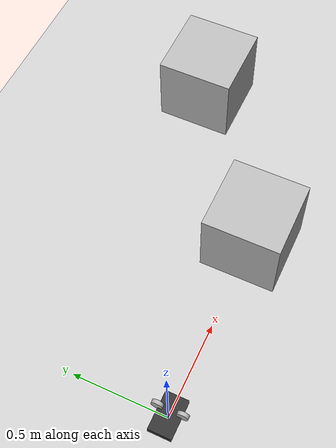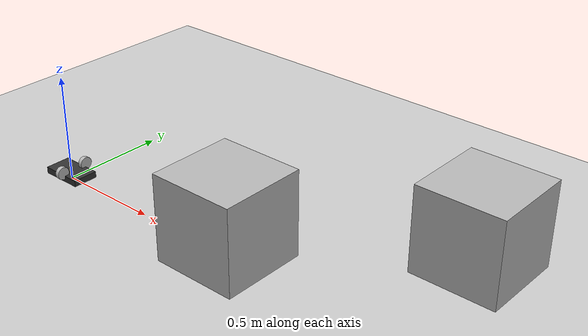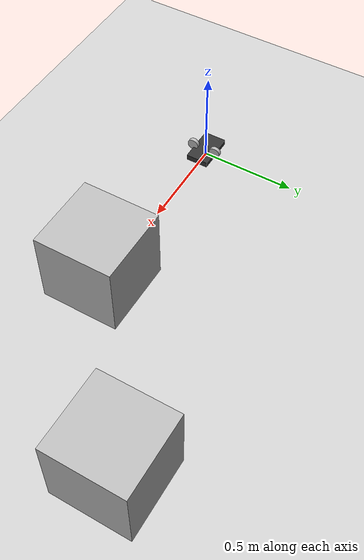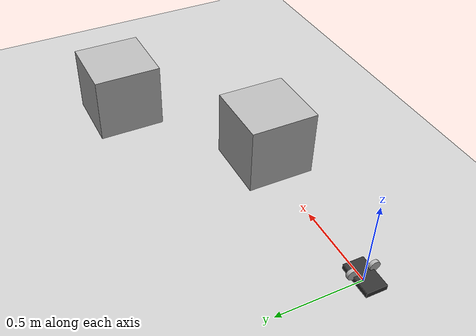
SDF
<sdf version='1.10'>
  <world name='factory'>
    <gravity>0 0 -9.8100000000000005</gravity>
    <magnetic_field>5.5644999999999998e-06 2.2875799999999999e-05 -4.2388400000000002e-05</magnetic_field>
    <atmosphere type='adiabatic'/>
    <physics type='ode'>
      <max_step_size>0.001</max_step_size>
      <real_time_factor>1</real_time_factor>
      <real_time_update_rate>1000</real_time_update_rate>
    </physics>
    <scene>
      <ambient>0.400000006 0.400000006 0.400000006 1</ambient>
      <background>0.699999988 0.699999988 0.699999988 1</background>
      <shadows>true</shadows>
    </scene>
    <model name='ground'>
      <static>true</static>
      <link name='link'>
        <collision name='col'>
          <geometry>
            <plane>
              <normal>0 0 1</normal>
              <size>100 100</size>
            </plane>
          </geometry>
          <surface>
            <friction>
              <ode/>
            </friction>
            <bounce/>
            <contact/>
          </surface>
        </collision>
        <visual name='vis'>
          <geometry>
            <plane>
              <normal>0 0 1</normal>
              <size>100 100</size>
            </plane>
          </geometry>
          <material>
            <ambient>0.800000012 0.800000012 0.800000012 1</ambient>
            <diffuse>0.800000012 0.800000012 0.800000012 1</diffuse>
          </material>
        </visual>
        <pose>0 0 0 0 0 0</pose>
        <inertial>
          <pose>0 0 0 0 0 0</pose>
          <mass>1</mass>
          <inertia>
            <ixx>1</ixx>
            <ixy>0</ixy>
            <ixz>0</ixz>
            <iyy>1</iyy>
            <iyz>0</iyz>
            <izz>1</izz>
          </inertia>
        </inertial>
        <enable_wind>false</enable_wind>
      </link>
      <pose>0 0 0 0 0 0</pose>
      <self_collide>false</self_collide>
    </model>
    <model name='box_1'>
      <static>true</static>
      <pose>1 0 0.20000000000000001 0 0 0</pose>
      <link name='link'>
        <collision name='col'>
          <geometry>
            <box>
              <size>0.40000000000000002 0.40000000000000002 0.40000000000000002</size>
            </box>
          </geometry>
          <surface>
            <friction>
              <ode/>
            </friction>
            <bounce/>
            <contact/>
          </surface>
        </collision>
        <visual name='vis'>
          <geometry>
            <box>
              <size>0.40000000000000002 0.40000000000000002 0.40000000000000002</size>
            </box>
          </geometry>
        </visual>
        <pose>0 0 0 0 0 0</pose>
        <inertial>
          <pose>0 0 0 0 0 0</pose>
          <mass>1</mass>
          <inertia>
            <ixx>1</ixx>
            <ixy>0</ixy>
            <ixz>0</ixz>
            <iyy>1</iyy>
            <iyz>0</iyz>
            <izz>1</izz>
          </inertia>
        </inertial>
        <enable_wind>false</enable_wind>
      </link>
      <self_collide>false</self_collide>
    </model>
    <model name='box_2'>
      <static>true</static>
      <pose>1.8 0.59999999999999998 0.20000000000000001 0 0 0</pose>
      <link name='link'>
        <collision name='col'>
          <geometry>
            <box>
              <size>0.40000000000000002 0.40000000000000002 0.40000000000000002</size>
            </box>
          </geometry>
          <surface>
            <friction>
              <ode/>
            </friction>
            <bounce/>
            <contact/>
          </surface>
        </collision>
        <visual name='vis'>
          <geometry>
            <box>
              <size>0.40000000000000002 0.40000000000000002 0.40000000000000002</size>
            </box>
          </geometry>
        </visual>
        <pose>0 0 0 0 0 0</pose>
        <inertial>
          <pose>0 0 0 0 0 0</pose>
          <mass>1</mass>
          <inertia>
            <ixx>1</ixx>
            <ixy>0</ixy>
            <ixz>0</ixz>
            <iyy>1</iyy>
            <iyz>0</iyz>
            <izz>1</izz>
          </inertia>
        </inertial>
        <enable_wind>false</enable_wind>
      </link>
      <self_collide>false</self_collide>
    </model>
    <model name='picarx'>
      <pose>0 0 0.029999999999999999 0 0 0</pose>
      <static>false</static>
      <allow_auto_disable>true</allow_auto_disable>
      <link name='base_link'>
        <inertial>
          <mass>0.80000000000000004</mass>
          <inertia>
            <ixx>0.002</ixx>
            <iyy>0.0040000000000000001</iyy>
            <izz>0.0050000000000000001</izz>
            <ixy>0</ixy>
            <ixz>0</ixz>
            <iyz>0</iyz>
          </inertia>
          <pose>0 0 0 0 0 0</pose>
        </inertial>
        <collision name='base_col'>
          <geometry>
            <box>
              <size>0.20000000000000001 0.12 0.029999999999999999</size>
            </box>
          </geometry>
          <surface>
            <friction>
              <ode/>
            </friction>
            <bounce/>
            <contact/>
          </surface>
        </collision>
        <visual name='base_vis'>
          <geometry>
            <box>
              <size>0.20000000000000001 0.12 0.029999999999999999</size>
            </box>
          </geometry>
          <material>
            <diffuse>0.200000003 0.200000003 0.200000003 1</diffuse>
          </material>
        </visual>
        <pose>0 0 0 0 0 0</pose>
        <enable_wind>false</enable_wind>
      </link>
      <link name='left_wheel'>
        <pose>0.02 0.065000000000000002 0.029999999999999999 3.1415926535897931 1.5707926536359933 3.1415926535897931</pose>
        <inertial>
          <mass>0.050000000000000003</mass>
          <inertia>
            <ixx>0.0001</ixx>
            <iyy>0.0001</iyy>
            <izz>0.00020000000000000001</izz>
            <ixy>0</ixy>
            <ixz>0</ixz>
            <iyz>0</iyz>
          </inertia>
          <pose>0 0 0 0 0 0</pose>
        </inertial>
        <collision name='col'>
          <geometry>
            <cylinder>
              <radius>0.029999999999999999</radius>
              <length>0.02</length>
            </cylinder>
          </geometry>
          <surface>
            <friction>
              <ode/>
            </friction>
            <bounce/>
            <contact/>
          </surface>
        </collision>
        <visual name='vis'>
          <geometry>
            <cylinder>
              <radius>0.029999999999999999</radius>
              <length>0.02</length>
            </cylinder>
          </geometry>
        </visual>
        <enable_wind>false</enable_wind>
      </link>
      <link name='right_wheel'>
        <pose>0.02 -0.065000000000000002 0.029999999999999999 3.1415926535897931 1.5707926536359933 3.1415926535897931</pose>
        <inertial>
          <mass>0.050000000000000003</mass>
          <inertia>
            <ixx>0.0001</ixx>
            <iyy>0.0001</iyy>
            <izz>0.00020000000000000001</izz>
            <ixy>0</ixy>
            <ixz>0</ixz>
            <iyz>0</iyz>
          </inertia>
          <pose>0 0 0 0 0 0</pose>
        </inertial>
        <collision name='col'>
          <geometry>
            <cylinder>
              <radius>0.029999999999999999</radius>
              <length>0.02</length>
            </cylinder>
          </geometry>
          <surface>
            <friction>
              <ode/>
            </friction>
            <bounce/>
            <contact/>
          </surface>
        </collision>
        <visual name='vis'>
          <geometry>
            <cylinder>
              <radius>0.029999999999999999</radius>
              <length>0.02</length>
            </cylinder>
          </geometry>
        </visual>
        <enable_wind>false</enable_wind>
      </link>
      <joint name='left_wheel_joint' type='revolute'>
        <parent>base_link</parent>
        <child>left_wheel</child>
        <axis>
          <xyz>0 0 1</xyz>
          <limit>
            <lower>-10000000000000000</lower>
            <upper>10000000000000000</upper>
            <effort>inf</effort>
            <velocity>inf</velocity>
            <stiffness>100000000</stiffness>
            <dissipation>1</dissipation>
          </limit>
          <dynamics>
            <spring_reference>0</spring_reference>
            <spring_stiffness>0</spring_stiffness>
            <damping>0</damping>
            <friction>0</friction>
          </dynamics>
        </axis>
        <pose>-1.0408340855860843e-17 0 6.9388939039072284e-18 0 0 0</pose>
      </joint>
      <joint name='right_wheel_joint' type='revolute'>
        <parent>base_link</parent>
        <child>right_wheel</child>
        <axis>
          <xyz>0 0 1</xyz>
          <limit>
            <lower>-10000000000000000</lower>
            <upper>10000000000000000</upper>
            <effort>inf</effort>
            <velocity>inf</velocity>
            <stiffness>100000000</stiffness>
            <dissipation>1</dissipation>
          </limit>
          <dynamics>
            <spring_reference>0</spring_reference>
            <spring_stiffness>0</spring_stiffness>
            <damping>0</damping>
            <friction>0</friction>
          </dynamics>
        </axis>
        <pose>-1.0408340855860843e-17 0 6.9388939039072284e-18 0 0 0</pose>
      </joint>
      <link name='sonar_link'>
        <pose>0.11 0 0.050000000000000003 0 0 0</pose>
        <sensor name='front_scan' type='gpu_lidar'>
          <pose>0 0 0 0 0 0</pose>
          <topic>front_scan</topic>
          <update_rate>20</update_rate>
          <enable_metrics>false</enable_metrics>
          <lidar>
            <scan>
              <horizontal>
                <samples>9</samples>
                <resolution>1</resolution>
                <min_angle>-0.45000000000000001</min_angle>
                <max_angle>0.45000000000000001</max_angle>
              </horizontal>
              <vertical>
                <samples>1</samples>
                <min_angle>0</min_angle>
                <max_angle>0</max_angle>
                <resolution>1</resolution>
              </vertical>
            </scan>
            <range>
              <min>0.02</min>
              <max>3</max>
              <resolution>0</resolution>
            </range>
            <noise>
              <type>none</type>
              <mean>0</mean>
              <stddev>0</stddev>
            </noise>
            <visibility_mask>4294967295</visibility_mask>
          </lidar>
        </sensor>
        <inertial>
          <pose>0 0 0 0 0 0</pose>
          <mass>1</mass>
          <inertia>
            <ixx>1</ixx>
            <ixy>0</ixy>
            <ixz>0</ixz>
            <iyy>1</iyy>
            <iyz>0</iyz>
            <izz>1</izz>
          </inertia>
        </inertial>
        <enable_wind>false</enable_wind>
      </link>
      <link name='camera_link'>
        <pose>0.10000000000000001 0 0.059999999999999998 0 0 0</pose>
        <sensor name='front_camera' type='camera'>
          <pose>0 0 0 0 0 0</pose>
          <topic>image</topic>
          <update_rate>15</update_rate>
          <enable_metrics>false</enable_metrics>
          <camera name='__default__'>
            <pose>0 0 0 0 0 0</pose>
            <horizontal_fov>1.0469999999999999</horizontal_fov>
            <image>
              <width>320</width>
              <height>240</height>
              <format>RGB_INT8</format>
              <anti_aliasing>4</anti_aliasing>
            </image>
            <camera_info_topic>__default__</camera_info_topic>
            <trigger_topic></trigger_topic>
            <triggered>false</triggered>
            <clip>
              <near>0.02</near>
              <far>20</far>
            </clip>
            <save enabled='false'>
              <path>__default__</path>
            </save>
            <visibility_mask>4294967295</visibility_mask>
            <noise>
              <type>none</type>
              <mean>0</mean>
              <stddev>0</stddev>
            </noise>
            <distortion>
              <k1>0</k1>
              <k2>0</k2>
              <k3>0</k3>
              <p1>0</p1>
              <p2>0</p2>
              <center>0.5 0.5</center>
            </distortion>
            <lens>
              <type>stereographic</type>
              <scale_to_hfov>true</scale_to_hfov>
              <cutoff_angle>1.5707963267948966</cutoff_angle>
              <env_texture_size>256</env_texture_size>
            </lens>
            <optical_frame_id></optical_frame_id>
          </camera>
        </sensor>
        <inertial>
          <pose>0 0 0 0 0 0</pose>
          <mass>1</mass>
          <inertia>
            <ixx>1</ixx>
            <ixy>0</ixy>
            <ixz>0</ixz>
            <iyy>1</iyy>
            <iyz>0</iyz>
            <izz>1</izz>
          </inertia>
        </inertial>
        <enable_wind>false</enable_wind>
      </link>
      <plugin name='diff_drive' filename='gz-sim-diff-drive-system'>
        <left_joint>left_wheel_joint</left_joint>
        <right_joint>right_wheel_joint</right_joint>
        <wheel_separation>0.13</wheel_separation>
        <wheel_radius>0.03</wheel_radius>
        <odom_publish_frequency>20</odom_publish_frequency>
      </plugin>
      <self_collide>false</self_collide>
    </model>
    <light name='sun' type='directional'>
      <pose>0 0 0 0 0 0</pose>
      <cast_shadows>true</cast_shadows>
      <intensity>1</intensity>
      <direction>-0.5 0.5 -1</direction>
      <diffuse>1 1 1 1</diffuse>
      <specular>0.100000001 0.100000001 0.100000001 1</specular>
      <attenuation>
        <range>10</range>
        <linear>1</linear>
        <constant>1</constant>
        <quadratic>0</quadratic>
      </attenuation>
      <spot>
        <inner_angle>0</inner_angle>
        <outer_angle>0</outer_angle>
        <falloff>0</falloff>
      </spot>
    </light>
  </world>
</sdf>
